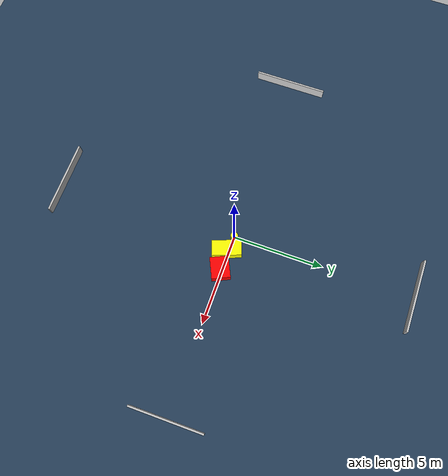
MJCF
<?xml version="1.0" ?>
<mujoco model="generated_environment">
  <option timestep="0.01" integrator="RK4" cone="elliptic"/>
  <default>
    <geom density="1"/>
  </default>
  <asset>
    <texture builtin="gradient" height="3072" name="skybox" rgb1="0.3 0.5 0.7" rgb2="0 0 0" type="skybox" width="512"/>
    <texture builtin="checker" height="300" name="groundplane" rgb1="0.2 0.3 0.4" rgb2="0.1 0.2 0.3" type="2d" width="300"/>
    <material name="groundplane" reflectance="0.2" texrepeat="5 5" texture="groundplane"/>
  </asset>
  <worldbody>
    <light dir="0 0 -1" directional="true" pos="0 0 1.5"/>
    <geom condim="3" friction="0.5 0.005 0.001" material="groundplane" name="floor" pos="0 0 0" size="0 0 0.05" type="plane"/>
    <body name="walls">
      <geom name="wall_1" condim="4" pos="-10.0 0.0 0.3" rgba="0.800000011920929 0.800000011920929 0.800000011920929 1.0" size="0.05 2.0 0.3" type="box"/>
      <geom name="wall_2" condim="4" pos="10.0 0.0 0.3" rgba="0.800000011920929 0.800000011920929 0.800000011920929 1.0" size="0.05 2.0 0.3" type="box"/>
      <geom name="wall_3" condim="4" pos="0.0 -10.0 0.3" rgba="0.800000011920929 0.800000011920929 0.800000011920929 1.0" size="2.0 0.05 0.3" type="box"/>
      <geom name="wall_4" condim="4" pos="0.0 10.0 0.3" rgba="0.800000011920929 0.800000011920929 0.800000011920929 1.0" size="2.0 0.05 0.3" type="box"/>
    </body>
    <body name="robot">
      <joint name="joint_x" type="slide" pos="0 0 0" axis="1 0 0"/>
      <joint name="joint_y" type="slide" pos="0 0 0" axis="0 1 0"/>
      <geom name="robot" type="cylinder" pos="0.0 0.0 0.2" size="0.2 0.2 0.0" mass="5.0" friction="1.0 0.005 0.0001" condim="4" rgba="1.0 1.0 0.0 1.0"/>
    </body>
    <body name="obstacle_1_movable">
      <geom name="obstacle_1_movable" condim="4" pos="0.8353598418380505 -0.13872189039805669 0.3" euler="0 0 290.69868241133724" friction="0.0 0.005 0.001" rgba="1.0 1.0 0.0 1.0" size="0.7981363712177754 0.4210783755039636 0.3" type="box" mass="0.1"/>
      <joint type="free"/>
    </body>
    <body name="obstacle_2_static">
      <geom name="obstacle_2_static" condim="4" pos="1.966405038105371 -0.10221081666450667 0.3" euler="0 0 25.12240097791514" friction="0.0 0.005 0.001" rgba="1.0 0.0 0.0 1.0" size="0.5843797891099511 0.5022367103003158 0.3" type="box"/>
    </body>
  </worldbody>
  <actuator>
    <motor name="actuator_x" joint="joint_x" gear="1" ctrlrange="-1 1"/>
    <motor name="actuator_y" joint="joint_y" gear="1" ctrlrange="-1 1"/>
  </actuator>
</mujoco>
